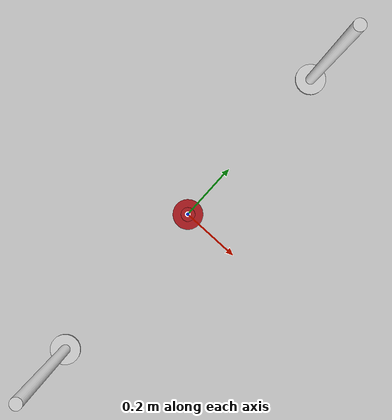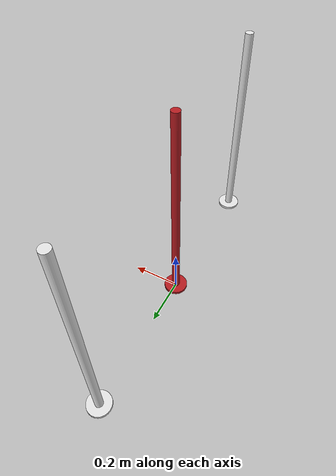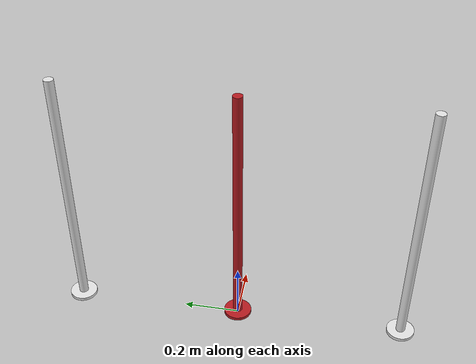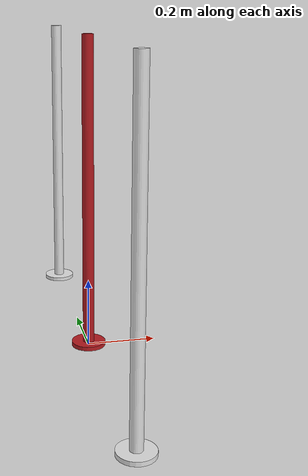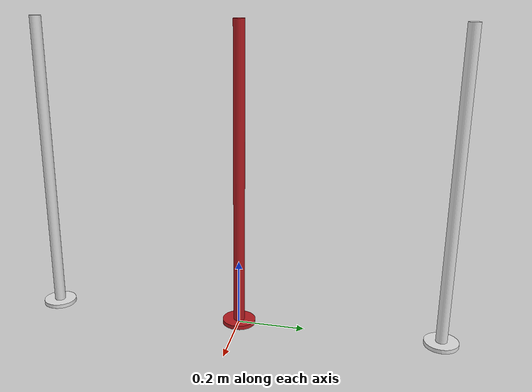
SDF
<?xml version="1.0"?>
<sdf version="1.9">
  <model name="robosub_slalom">
    <static>false</static>
    <plugin filename="gz-sim-label-system" name="gz::sim::systems::Label">
      <label>13</label>
    </plugin>
    <link name="pipe_left">
      <pose>0 0.6 0.462 0 0 0</pose>
      <inertial>
        <pose>0 0 0 0 0 0</pose>
        <mass>0.35</mass>
        <inertia>
          <ixx>0.0236494</ixx><ixy>0</ixy><ixz>0</ixz>
          <iyy>0.0236494</iyy><iyz>0</iyz>
          <izz>4.88057e-05</izz>
        </inertia>
      </inertial>
      <visual name="pipe_left_visual">
        <pose>0 0 0 0 0 0</pose>
        <geometry><cylinder><radius>0.0167</radius><length>0.9</length></cylinder></geometry>
        <material>
          <ambient>0.9 0.9 0.9 1</ambient>
          <diffuse>0.9 0.9 0.9 1</diffuse>
          <specular>0.55 0.55 0.55 1</specular>
          <emissive>0.252 0.252 0.252 1</emissive>
          <pbr>
            <metal>
              <albedo_map>model://robosub_textures/albedo_pvc.png</albedo_map>
              <metalness>0.0</metalness>
              <roughness_map>model://robosub_textures/rough_pvc.png</roughness_map>
              <normal_map>model://robosub_textures/norm_pvc.png</normal_map>
            </metal>
          </pbr>
        </material>
      </visual>
      <collision name="pipe_left_collision">
        <pose>0 0 0 0 0 0</pose>
        <geometry><cylinder><radius>0.0167</radius><length>0.9</length></cylinder></geometry>
      </collision>
    </link>
    <link name="pipe_left_anchor">
      <pose>0 0.6 0.006 0 0 0</pose>
      <inertial>
        <pose>0 0 0 0 0 0</pose>
        <mass>0.9</mass>
        <inertia>
          <ixx>0.0005733</ixx><ixy>0</ixy><ixz>0</ixz>
          <iyy>0.0005733</iyy><iyz>0</iyz>
          <izz>0.001125</izz>
        </inertia>
      </inertial>
      <visual name="pipe_left_anchor_visual">
        <pose>0 0 0 0 0 0</pose>
        <geometry><cylinder><radius>0.05</radius><length>0.012</length></cylinder></geometry>
        <material>
          <ambient>0.9 0.9 0.9 1</ambient>
          <diffuse>0.9 0.9 0.9 1</diffuse>
          <specular>0.55 0.55 0.55 1</specular>
          <emissive>0.252 0.252 0.252 1</emissive>
          <pbr>
            <metal>
              <albedo_map>model://robosub_textures/albedo_pvc.png</albedo_map>
              <metalness>0.0</metalness>
              <roughness_map>model://robosub_textures/rough_pvc.png</roughness_map>
              <normal_map>model://robosub_textures/norm_pvc.png</normal_map>
            </metal>
          </pbr>
        </material>
      </visual>
      <collision name="pipe_left_anchor_collision">
        <pose>0 0 0 0 0 0</pose>
        <geometry><cylinder><radius>0.05</radius><length>0.012</length></cylinder></geometry>
        <surface>
          <friction>
            <ode><mu>0.8</mu><mu2>0.8</mu2></ode>
            <bullet><friction>0.8</friction><friction2>0.8</friction2></bullet>
          </friction>
        </surface>
      </collision>
    </link>
    <link name="pipe_centre">
      <pose>0 0 0.462 0 0 0</pose>
      <inertial>
        <pose>0 0 0 0 0 0</pose>
        <mass>0.35</mass>
        <inertia>
          <ixx>0.0236494</ixx><ixy>0</ixy><ixz>0</ixz>
          <iyy>0.0236494</iyy><iyz>0</iyz>
          <izz>4.88057e-05</izz>
        </inertia>
      </inertial>
      <visual name="pipe_centre_visual">
        <pose>0 0 0 0 0 0</pose>
        <geometry><cylinder><radius>0.0167</radius><length>0.9</length></cylinder></geometry>
        <material>
          <ambient>0.72 0.11 0.13 1</ambient>
          <diffuse>0.72 0.11 0.13 1</diffuse>
          <specular>0.55 0.55 0.55 1</specular>
          <emissive>0.202 0.0308 0.0364 1</emissive>
          <pbr>
            <metal>
              <albedo_map>model://robosub_textures/albedo_pvc.png</albedo_map>
              <metalness>0.0</metalness>
              <roughness_map>model://robosub_textures/rough_pvc.png</roughness_map>
              <normal_map>model://robosub_textures/norm_pvc.png</normal_map>
            </metal>
          </pbr>
        </material>
      </visual>
      <collision name="pipe_centre_collision">
        <pose>0 0 0 0 0 0</pose>
        <geometry><cylinder><radius>0.0167</radius><length>0.9</length></cylinder></geometry>
      </collision>
    </link>
    <link name="pipe_centre_anchor">
      <pose>0 0 0.006 0 0 0</pose>
      <inertial>
        <pose>0 0 0 0 0 0</pose>
        <mass>0.9</mass>
        <inertia>
          <ixx>0.0005733</ixx><ixy>0</ixy><ixz>0</ixz>
          <iyy>0.0005733</iyy><iyz>0</iyz>
          <izz>0.001125</izz>
        </inertia>
      </inertial>
      <visual name="pipe_centre_anchor_visual">
        <pose>0 0 0 0 0 0</pose>
        <geometry><cylinder><radius>0.05</radius><length>0.012</length></cylinder></geometry>
        <material>
          <ambient>0.72 0.11 0.13 1</ambient>
          <diffuse>0.72 0.11 0.13 1</diffuse>
          <specular>0.55 0.55 0.55 1</specular>
          <emissive>0.202 0.0308 0.0364 1</emissive>
          <pbr>
            <metal>
              <albedo_map>model://robosub_textures/albedo_pvc.png</albedo_map>
              <metalness>0.0</metalness>
              <roughness_map>model://robosub_textures/rough_pvc.png</roughness_map>
              <normal_map>model://robosub_textures/norm_pvc.png</normal_map>
            </metal>
          </pbr>
        </material>
      </visual>
      <collision name="pipe_centre_anchor_collision">
        <pose>0 0 0 0 0 0</pose>
        <geometry><cylinder><radius>0.05</radius><length>0.012</length></cylinder></geometry>
        <surface>
          <friction>
            <ode><mu>0.8</mu><mu2>0.8</mu2></ode>
            <bullet><friction>0.8</friction><friction2>0.8</friction2></bullet>
          </friction>
        </surface>
      </collision>
    </link>
    <link name="pipe_right">
      <pose>0 -0.6 0.462 0 0 0</pose>
      <inertial>
        <pose>0 0 0 0 0 0</pose>
        <mass>0.35</mass>
        <inertia>
          <ixx>0.0236494</ixx><ixy>0</ixy><ixz>0</ixz>
          <iyy>0.0236494</iyy><iyz>0</iyz>
          <izz>4.88057e-05</izz>
        </inertia>
      </inertial>
      <visual name="pipe_right_visual">
        <pose>0 0 0 0 0 0</pose>
        <geometry><cylinder><radius>0.0167</radius><length>0.9</length></cylinder></geometry>
        <material>
          <ambient>0.9 0.9 0.9 1</ambient>
          <diffuse>0.9 0.9 0.9 1</diffuse>
          <specular>0.55 0.55 0.55 1</specular>
          <emissive>0.252 0.252 0.252 1</emissive>
          <pbr>
            <metal>
              <albedo_map>model://robosub_textures/albedo_pvc.png</albedo_map>
              <metalness>0.0</metalness>
              <roughness_map>model://robosub_textures/rough_pvc.png</roughness_map>
              <normal_map>model://robosub_textures/norm_pvc.png</normal_map>
            </metal>
          </pbr>
        </material>
      </visual>
      <collision name="pipe_right_collision">
        <pose>0 0 0 0 0 0</pose>
        <geometry><cylinder><radius>0.0167</radius><length>0.9</length></cylinder></geometry>
      </collision>
    </link>
    <link name="pipe_right_anchor">
      <pose>0 -0.6 0.006 0 0 0</pose>
      <inertial>
        <pose>0 0 0 0 0 0</pose>
        <mass>0.9</mass>
        <inertia>
          <ixx>0.0005733</ixx><ixy>0</ixy><ixz>0</ixz>
          <iyy>0.0005733</iyy><iyz>0</iyz>
          <izz>0.001125</izz>
        </inertia>
      </inertial>
      <visual name="pipe_right_anchor_visual">
        <pose>0 0 0 0 0 0</pose>
        <geometry><cylinder><radius>0.05</radius><length>0.012</length></cylinder></geometry>
        <material>
          <ambient>0.9 0.9 0.9 1</ambient>
          <diffuse>0.9 0.9 0.9 1</diffuse>
          <specular>0.55 0.55 0.55 1</specular>
          <emissive>0.252 0.252 0.252 1</emissive>
          <pbr>
            <metal>
              <albedo_map>model://robosub_textures/albedo_pvc.png</albedo_map>
              <metalness>0.0</metalness>
              <roughness_map>model://robosub_textures/rough_pvc.png</roughness_map>
              <normal_map>model://robosub_textures/norm_pvc.png</normal_map>
            </metal>
          </pbr>
        </material>
      </visual>
      <collision name="pipe_right_anchor_collision">
        <pose>0 0 0 0 0 0</pose>
        <geometry><cylinder><radius>0.05</radius><length>0.012</length></cylinder></geometry>
        <surface>
          <friction>
            <ode><mu>0.8</mu><mu2>0.8</mu2></ode>
            <bullet><friction>0.8</friction><friction2>0.8</friction2></bullet>
          </friction>
        </surface>
      </collision>
    </link>
    <joint name="pipe_left_mooring" type="fixed">
      <parent>world</parent>
      <child>pipe_left_anchor</child>
    </joint>
    <joint name="pipe_left_hinge" type="universal">
      <parent>pipe_left_anchor</parent>
      <child>pipe_left</child>
      <pose>0 0 -0.45 0 0 0</pose>
      <axis>
        <xyz>1 0 0</xyz>
        <limit>
          <lower>-1.2</lower>
          <upper>1.2</upper>
        </limit>
        <dynamics>
          <damping>0.05</damping>
          <spring_stiffness>0</spring_stiffness>
          <spring_reference>0</spring_reference>
        </dynamics>
      </axis>
      <axis2>
        <xyz>0 1 0</xyz>
        <limit>
          <lower>-1.2</lower>
          <upper>1.2</upper>
        </limit>
        <dynamics>
          <damping>0.05</damping>
          <spring_stiffness>0</spring_stiffness>
          <spring_reference>0</spring_reference>
        </dynamics>
      </axis2>
    </joint>
    <joint name="pipe_centre_mooring" type="fixed">
      <parent>world</parent>
      <child>pipe_centre_anchor</child>
    </joint>
    <joint name="pipe_centre_hinge" type="universal">
      <parent>pipe_centre_anchor</parent>
      <child>pipe_centre</child>
      <pose>0 0 -0.45 0 0 0</pose>
      <axis>
        <xyz>1 0 0</xyz>
        <limit>
          <lower>-1.2</lower>
          <upper>1.2</upper>
        </limit>
        <dynamics>
          <damping>0.05</damping>
          <spring_stiffness>0</spring_stiffness>
          <spring_reference>0</spring_reference>
        </dynamics>
      </axis>
      <axis2>
        <xyz>0 1 0</xyz>
        <limit>
          <lower>-1.2</lower>
          <upper>1.2</upper>
        </limit>
        <dynamics>
          <damping>0.05</damping>
          <spring_stiffness>0</spring_stiffness>
          <spring_reference>0</spring_reference>
        </dynamics>
      </axis2>
    </joint>
    <joint name="pipe_right_mooring" type="fixed">
      <parent>world</parent>
      <child>pipe_right_anchor</child>
    </joint>
    <joint name="pipe_right_hinge" type="universal">
      <parent>pipe_right_anchor</parent>
      <child>pipe_right</child>
      <pose>0 0 -0.45 0 0 0</pose>
      <axis>
        <xyz>1 0 0</xyz>
        <limit>
          <lower>-1.2</lower>
          <upper>1.2</upper>
        </limit>
        <dynamics>
          <damping>0.05</damping>
          <spring_stiffness>0</spring_stiffness>
          <spring_reference>0</spring_reference>
        </dynamics>
      </axis>
      <axis2>
        <xyz>0 1 0</xyz>
        <limit>
          <lower>-1.2</lower>
          <upper>1.2</upper>
        </limit>
        <dynamics>
          <damping>0.05</damping>
          <spring_stiffness>0</spring_stiffness>
          <spring_reference>0</spring_reference>
        </dynamics>
      </axis2>
    </joint>
    <plugin filename="gz-sim-hydrodynamics-system" name="gz::sim::systems::Hydrodynamics">
      <link_name>pipe_left</link_name>
      <water_density>1000.0</water_density>
      <xUabsU>-15.03</xUabsU>
      <yVabsV>-15.03</yVabsV>
      <zWabsW>-0.438079</zWabsW>
      <kPabsP>-2.73922</kPabsP>
      <mQabsQ>-2.73922</mQabsQ>
      <nRabsR>-2.73922</nRabsR>
    </plugin>
    <plugin filename="gz-sim-hydrodynamics-system" name="gz::sim::systems::Hydrodynamics">
      <link_name>pipe_centre</link_name>
      <water_density>1000.0</water_density>
      <xUabsU>-15.03</xUabsU>
      <yVabsV>-15.03</yVabsV>
      <zWabsW>-0.438079</zWabsW>
      <kPabsP>-2.73922</kPabsP>
      <mQabsQ>-2.73922</mQabsQ>
      <nRabsR>-2.73922</nRabsR>
    </plugin>
    <plugin filename="gz-sim-hydrodynamics-system" name="gz::sim::systems::Hydrodynamics">
      <link_name>pipe_right</link_name>
      <water_density>1000.0</water_density>
      <xUabsU>-15.03</xUabsU>
      <yVabsV>-15.03</yVabsV>
      <zWabsW>-0.438079</zWabsW>
      <kPabsP>-2.73922</kPabsP>
      <mQabsQ>-2.73922</mQabsQ>
      <nRabsR>-2.73922</nRabsR>
    </plugin>
  </model>
</sdf>
